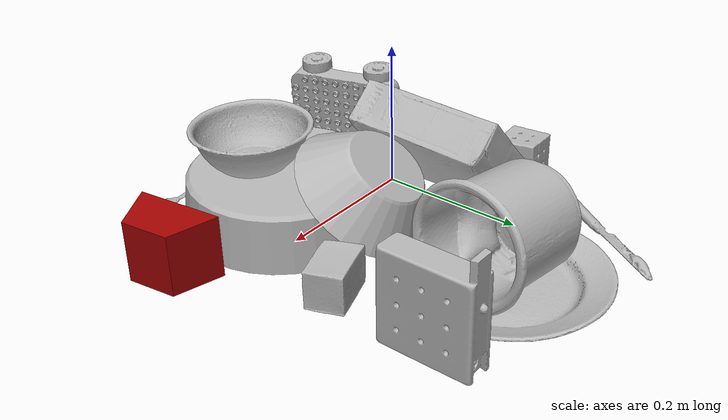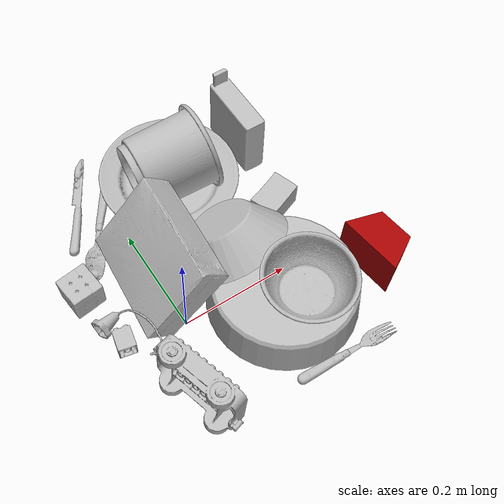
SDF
<sdf version="1.4">
  <world name="default">
    <light name="light1" type="point">
      <pose>0 0 1 0 0 0</pose>
      <diffuse>3 3 3 1</diffuse>
      <specular>3 3 3 1</specular>
    </light>
    <light name="light2" type="point">
      <pose>0 0.5 2 0 0 0</pose>
      <diffuse>1 1 1 1</diffuse>
      <specular>1 1 1 1</specular>
    </light>
    <light name="light3" type="point">
      <pose>0 0.5 2 0 0 0</pose>
      <diffuse>3 3 3 1</diffuse>
      <specular>3 3 3 1</specular>
    </light>
    <scene>
      <ambient>0.7 0.7 0.7</ambient>
    </scene>
    <model name="plate1">
      <link name="link_plate1">
        <collision name="default">
          <geometry>
            <mesh>
              <uri>model://pan_tefal/collision_meshes/collision.obj</uri>
              <scale>1.0 1.0 1.0</scale>
            </mesh>
          </geometry>
          <surface>
            <friction>
              <ode>
                <mu>0.5</mu>
                <mu2>0.5</mu2>
              </ode>
            </friction>
          <contact>
        <ode>
            <max_vel>0</max_vel>
            <min_depth>0.0001</min_depth>
            <kp>1e8</kp>
        </ode>
    </contact></surface>
        </collision>
        <visual name="default">
          <geometry>
            <mesh>
              <uri>model://pan_tefal/visual_meshes/visual.dae</uri>
              <scale>1.0 1.0 1.0</scale>
            </mesh>
          </geometry>
        </visual>
        <inertial>
          <mass>0.7575002908706665</mass>
          <pose>-0.00018002181604970247 3.278869189671241e-05 -0.00851493701338768 0.0008190213215647545 -0.0003301469994364688 -0.3318472895374236</pose>
          <inertia>
            <ixx>0.0052289874</ixx>
            <iyy>0.0052627004</iyy>
            <izz>0.009625561</izz>
            <ixy>0</ixy>
            <ixz>0</ixz>
            <iyz>0</iyz>
          </inertia>
        </inertial>
      </link>
      <pose>0.16540834307670593 -0.04800988733768463 0.03782228007912636 3.1415884256913627 -2.298823409807586e-06 2.5037458208143133</pose>
    </model>
    <model name="plate2">
      <link name="link_plate2">
        <collision name="default">
          <geometry>
            <mesh>
              <uri>model://plate/collision_meshes/collision.obj</uri>
              <scale>1.0 1.0 1.0</scale>
            </mesh>
          </geometry>
          <surface>
            <friction>
              <ode>
                <mu>0.5</mu>
                <mu2>0.5</mu2>
              </ode>
            </friction>
          <contact>
        <ode>
            <max_vel>0</max_vel>
            <min_depth>0.0001</min_depth>
            <kp>1e8</kp>
        </ode>
    </contact></surface>
        </collision>
        <visual name="default">
          <geometry>
            <mesh>
              <uri>model://plate/visual_meshes/visual.dae</uri>
              <scale>1.0 1.0 1.0</scale>
            </mesh>
          </geometry>
        </visual>
        <inertial>
          <mass>0.24305373430252075</mass>
          <pose>-0.0006044657784514129 0.0002782582014333457 -0.0010561988456174731 0.0022187349237576767 -0.0032255124479001144 0.4526250186623527</pose>
          <inertia>
            <ixx>0.00113701</ixx>
            <iyy>0.0011261352</iyy>
            <izz>0.0022238225</izz>
            <ixy>0</ixy>
            <ixz>0</ixz>
            <iyz>0</iyz>
          </inertia>
        </inertial>
      </link>
      <pose>0.12660396099090576 0.26857808232307434 0.013733085244894028 -5.013649689798627e-07 -2.204269611692718e-06 0.8925074987975505</pose>
    </model>
    <model name="bowl1">
      <link name="link_bowl1">
        <collision name="default">
          <geometry>
            <mesh>
              <uri>model://bowl/collision_meshes/collision.obj</uri>
              <scale>1.0 1.0 1.0</scale>
            </mesh>
          </geometry>
          <surface>
            <friction>
              <ode>
                <mu>0.5</mu>
                <mu2>0.5</mu2>
              </ode>
            </friction>
          <contact>
        <ode>
            <max_vel>0</max_vel>
            <min_depth>0.0001</min_depth>
            <kp>1e8</kp>
        </ode>
    </contact></surface>
        </collision>
        <visual name="default">
          <geometry>
            <mesh>
              <uri>model://bowl/visual_meshes/visual.dae</uri>
              <scale>1.0 1.0 1.0</scale>
            </mesh>
          </geometry>
        </visual>
        <inertial>
          <mass>0.08028676360845566</mass>
          <pose>0.00020445045083761215 -0.0010302026057615876 -0.0008042661938816309 -0.015764207515600946 0.014546645366850262 0.7140316236369888</pose>
          <inertia>
            <ixx>0.00018442512</ixx>
            <iyy>0.00018030431</iyy>
            <izz>0.0003102665</izz>
            <ixy>0</ixy>
            <ixz>0</ixz>
            <iyz>0</iyz>
          </inertia>
        </inertial>
      </link>
      <pose>0.1801273077726364 -0.08642246574163437 0.10461966693401337 -0.018998072299202494 0.010355730896347568 -2.6587045279647867</pose>
    </model>
    <model name="bowl2">
      <link name="link_bowl2">
        <collision name="default">
          <geometry>
            <mesh>
              <uri>model://bowl_a/collision_meshes/collision.obj</uri>
              <scale>1.0 1.0 1.0</scale>
            </mesh>
          </geometry>
          <surface>
            <friction>
              <ode>
                <mu>0.5</mu>
                <mu2>0.5</mu2>
              </ode>
            </friction>
          <contact>
        <ode>
            <max_vel>0</max_vel>
            <min_depth>0.0001</min_depth>
            <kp>1e8</kp>
        </ode>
    </contact></surface>
        </collision>
        <visual name="default">
          <geometry>
            <mesh>
              <uri>model://bowl_a/visual_meshes/visual.dae</uri>
              <scale>1.0 1.0 1.0</scale>
            </mesh>
          </geometry>
        </visual>
        <inertial>
          <mass>0.2016693353652954</mass>
          <pose>0.000278673687716946 4.731108856503852e-05 -0.0013765295734629035 -0.0009805301894988984 -0.0010938186520021772 -0.19123883274053055</pose>
          <inertia>
            <ixx>0.00057416206</ixx>
            <iyy>0.000577687</iyy>
            <izz>0.0010211696</izz>
            <ixy>0</ixy>
            <ixz>0</ixz>
            <iyz>0</iyz>
          </inertia>
        </inertial>
      </link>
      <pose>0.12920647859573364 0.07295124232769012 0.08240222930908203 3.0321417340500645 0.6381558390222016 1.6824936810072895</pose>
    </model>
    <model name="silverware1">
      <link name="link_silverware1">
        <collision name="default">
          <geometry>
            <mesh>
              <uri>model://spoon/collision_meshes/collision.obj</uri>
              <scale>1.0 1.0 1.0</scale>
            </mesh>
          </geometry>
          <surface>
            <friction>
              <ode>
                <mu>0.5</mu>
                <mu2>0.5</mu2>
              </ode>
            </friction>
          <contact>
        <ode>
            <max_vel>0</max_vel>
            <min_depth>0.0001</min_depth>
            <kp>1e8</kp>
        </ode>
    </contact></surface>
        </collision>
        <visual name="default">
          <geometry>
            <mesh>
              <uri>model://spoon/visual_meshes/visual.dae</uri>
              <scale>1.0 1.0 1.0</scale>
            </mesh>
          </geometry>
        </visual>
        <inertial>
          <mass>0.023438503965735435</mass>
          <pose>-0.005526317749172449 -0.0016034176805987954 -0.000727164966519922 0.03521671071703309 -0.03906584129558259 0.006150610048623938</pose>
          <inertia>
            <ixx>1.3036873e-06</ixx>
            <iyy>8.918272e-05</iyy>
            <izz>8.982564e-05</izz>
            <ixy>0</ixy>
            <ixz>0</ixz>
            <iyz>0</iyz>
          </inertia>
        </inertial>
      </link>
      <pose>-0.04024277254939079 0.23627544939517975 0.010201470926404 -2.7145402706672077 -0.061757488257934534 -2.179440727333121</pose>
    </model>
    <model name="box1">
      <link name="link_box1">
        <collision name="default">
          <geometry>
            <mesh>
              <uri>model://cracker_box/collision_meshes/collision.obj</uri>
              <scale>1.0 1.0 1.0</scale>
            </mesh>
          </geometry>
          <surface>
            <friction>
              <ode>
                <mu>0.5</mu>
                <mu2>0.5</mu2>
              </ode>
            </friction>
          <contact>
        <ode>
            <max_vel>0</max_vel>
            <min_depth>0.0001</min_depth>
            <kp>1e8</kp>
        </ode>
    </contact></surface>
        </collision>
        <visual name="default">
          <geometry>
            <mesh>
              <uri>model://cracker_box/visual_meshes/visual.dae</uri>
              <scale>1.0 1.0 1.0</scale>
            </mesh>
          </geometry>
        </visual>
        <inertial>
          <mass>3.1733922958374023</mass>
          <pose>0.0009464119793847203 0.00025434247800149024 -0.0017029535956680775 -0.00031620768891544627 -0.011106485874643508 0.0025467963987026074</pose>
          <inertia>
            <ixx>0.008071693</ixx>
            <iyy>0.013327951</iyy>
            <izz>0.01902021</izz>
            <ixy>0</ixy>
            <ixz>0</ixz>
            <iyz>0</iyz>
          </inertia>
        </inertial>
      </link>
      <pose>0.008488435298204422 0.09428602457046509 0.08045022189617157 2.280475754666676 -0.014701186570697328 1.5137398737815202</pose>
    </model>
    <model name="box2">
      <link name="link_box2">
        <collision name="default">
          <geometry>
            <mesh>
              <uri>model://rubiks_cube/collision_meshes/collision.obj</uri>
              <scale>1.0 1.0 1.0</scale>
            </mesh>
          </geometry>
          <surface>
            <friction>
              <ode>
                <mu>0.5</mu>
                <mu2>0.5</mu2>
              </ode>
            </friction>
          <contact>
        <ode>
            <max_vel>0</max_vel>
            <min_depth>0.0001</min_depth>
            <kp>1e8</kp>
        </ode>
    </contact></surface>
        </collision>
        <visual name="default">
          <geometry>
            <mesh>
              <uri>model://rubiks_cube/visual_meshes/visual.dae</uri>
              <scale>1.0 1.0 1.0</scale>
            </mesh>
          </geometry>
        </visual>
        <inertial>
          <mass>0.15184316039085388</mass>
          <pose>2.6721041649580002e-05 5.2569666877388954e-05 -7.264316536748083e-06 -0.0546734747968529 -0.09813870099197174 -0.03445517010401606</pose>
          <inertia>
            <ixx>8.390353e-05</ixx>
            <iyy>8.351226e-05</iyy>
            <izz>8.459882e-05</izz>
            <ixy>0</ixy>
            <ixz>0</ixz>
            <iyz>0</iyz>
          </inertia>
        </inertial>
      </link>
      <pose>-0.12443375587463379 0.13482896983623505 0.02970021590590477 -1.6127565974325777 -0.020652331800921412 1.689969857342618</pose>
    </model>
    <model name="cup1">
      <link name="link_cup1">
        <collision name="default">
          <geometry>
            <mesh>
              <uri>model://f_cups/collision_meshes/collision.obj</uri>
              <scale>2.0 2.0 2.0</scale>
            </mesh>
          </geometry>
          <surface>
            <friction>
              <ode>
                <mu>0.5</mu>
                <mu2>0.5</mu2>
              </ode>
            </friction>
          <contact>
        <ode>
            <max_vel>0</max_vel>
            <min_depth>0.0001</min_depth>
            <kp>1e8</kp>
        </ode>
    </contact></surface>
        </collision>
        <visual name="default">
          <geometry>
            <mesh>
              <uri>model://f_cups/visual_meshes/visual.dae</uri>
              <scale>2.0 2.0 2.0</scale>
            </mesh>
          </geometry>
        </visual>
        <inertial>
          <mass>0.31799542903900146</mass>
          <pose>-0.006342939101159573 -0.0012480145087465644 -0.00731107359752059 0.7862267301708457 -0.2607925342729672 -0.18237300859269054</pose>
          <inertia>
            <ixx>0.0011956966</ixx>
            <iyy>0.0012542997</iyy>
            <izz>0.001305761</izz>
            <ixy>0</ixy>
            <ixz>0</ixz>
            <iyz>0</iyz>
          </inertia>
        </inertial>
      </link>
      <pose>0.12135220319032669 0.2584349513053894 0.07765331864356995 1.4776772451416573 -0.2557453139008457 1.5212256622422429</pose>
    </model>
    <model name="silverware2">
      <link name="link_silverware2">
        <collision name="default">
          <geometry>
            <mesh>
              <uri>model://knife/collision_meshes/collision.obj</uri>
              <scale>1.0 1.0 1.0</scale>
            </mesh>
          </geometry>
          <surface>
            <friction>
              <ode>
                <mu>0.5</mu>
                <mu2>0.5</mu2>
              </ode>
            </friction>
          <contact>
        <ode>
            <max_vel>0</max_vel>
            <min_depth>0.0001</min_depth>
            <kp>1e8</kp>
        </ode>
    </contact></surface>
        </collision>
        <visual name="default">
          <geometry>
            <mesh>
              <uri>model://knife/visual_meshes/visual.dae</uri>
              <scale>1.0 1.0 1.0</scale>
            </mesh>
          </geometry>
        </visual>
        <inertial>
          <mass>0.01713745854794979</mass>
          <pose>-0.02378525771200657 0.0015275123296305537 5.062021591584198e-05 0.07305753061421462 0.017248419855317693 -0.007409818535045194</pose>
          <inertia>
            <ixx>4.864306e-07</ixx>
            <iyy>6.583934e-05</iyy>
            <izz>6.5996e-05</izz>
            <ixy>0</ixy>
            <ixz>0</ixz>
            <iyz>0</iyz>
          </inertia>
        </inertial>
      </link>
      <pose>-0.047515641897916794 0.3091530203819275 0.0058107576332986355 2.889370729954412 0.02591493375330008 1.0431395189767447</pose>
    </model>
    <model name="silverware3">
      <link name="link_silverware3">
        <collision name="default">
          <geometry>
            <mesh>
              <uri>model://fork/collision_meshes/collision.obj</uri>
              <scale>1.0 1.0 1.0</scale>
            </mesh>
          </geometry>
          <surface>
            <friction>
              <ode>
                <mu>0.5</mu>
                <mu2>0.5</mu2>
              </ode>
            </friction>
          <contact>
        <ode>
            <max_vel>0</max_vel>
            <min_depth>0.0001</min_depth>
            <kp>1e8</kp>
        </ode>
    </contact></surface>
        </collision>
        <visual name="default">
          <geometry>
            <mesh>
              <uri>model://fork/visual_meshes/visual.dae</uri>
              <scale>1.0 1.0 1.0</scale>
            </mesh>
          </geometry>
        </visual>
        <inertial>
          <mass>0.012323527596890926</mass>
          <pose>-0.029570043087005615 0.00046588233090005815 0.0003218861238565296 -0.013551145261099908 -0.01097783717976447 0.01445390335153306</pose>
          <inertia>
            <ixx>4.3200933e-07</ixx>
            <iyy>3.2173175e-05</iyy>
            <izz>3.236641e-05</izz>
            <ixy>0</ixy>
            <ixz>0</ixz>
            <iyz>0</iyz>
          </inertia>
        </inertial>
      </link>
      <pose>0.19701193273067474 -0.1901979148387909 0.007446609437465668 -3.06349999385822 0.002835862233890947 -0.021132140086027755</pose>
    </model>
    <model name="toy1">
      <link name="link_toy1">
        <collision name="default">
          <geometry>
            <mesh>
              <uri>model://foam_brick/collision_meshes/collision.obj</uri>
              <scale>1.0 1.0 1.0</scale>
            </mesh>
          </geometry>
          <surface>
            <friction>
              <ode>
                <mu>0.5</mu>
                <mu2>0.5</mu2>
              </ode>
            </friction>
          <contact>
        <ode>
            <max_vel>0</max_vel>
            <min_depth>0.0001</min_depth>
            <kp>1e8</kp>
        </ode>
    </contact></surface>
        </collision>
        <visual name="default">
          <geometry>
            <mesh>
              <uri>model://foam_brick/visual_meshes/visual.dae</uri>
              <scale>1.0 1.0 1.0</scale>
            </mesh>
          </geometry>
        </visual>
        <inertial>
          <mass>0.22379855811595917</mass>
          <pose>-0.00025224717683158815 0.0003458436403889209 -0.0002532101352699101 -0.29401565582258504 0.017274431815567964 -0.0007449878256007176</pose>
          <inertia>
            <ixx>9.775939e-05</ixx>
            <iyy>0.00015607789</iyy>
            <izz>0.00015806146</izz>
            <ixy>0</ixy>
            <ixz>0</ixz>
            <iyz>0</iyz>
          </inertia>
        </inertial>
      </link>
      <pose>0.2576083540916443 0.11502417176961899 0.02549641765654087 3.13253363023575 0.00655899249284925 -2.783905382325841</pose>
    </model>
    <model name="toy2">
      <link name="link_toy2">
        <collision name="default">
          <geometry>
            <mesh>
              <uri>model://g_lego_duplo/collision_meshes/collision.obj</uri>
              <scale>1.0 1.0 1.0</scale>
            </mesh>
          </geometry>
          <surface>
            <friction>
              <ode>
                <mu>0.5</mu>
                <mu2>0.5</mu2>
              </ode>
            </friction>
          <contact>
        <ode>
            <max_vel>0</max_vel>
            <min_depth>0.0001</min_depth>
            <kp>1e8</kp>
        </ode>
    </contact></surface>
        </collision>
        <visual name="default">
          <geometry>
            <mesh>
              <uri>model://g_lego_duplo/visual_meshes/visual.dae</uri>
              <scale>1.0 1.0 1.0</scale>
            </mesh>
          </geometry>
        </visual>
        <inertial>
          <mass>0.5124852657318115</mass>
          <pose>-0.05004769191145897 0.0017554633086547256 0.003880675183609128 0.010962987419080987 0.0381082502855883 -0.09653031806986456</pose>
          <inertia>
            <ixx>0.0007425969</ixx>
            <iyy>0.0022451086</iyy>
            <izz>0.0028087152</izz>
            <ixy>0</ixy>
            <ixz>0</ixz>
            <iyz>0</iyz>
          </inertia>
        </inertial>
      </link>
      <pose>-0.06728708744049072 -0.0654253140091896 0.059839844703674316 1.6330812803064507 0.0019943658663145627 1.8593469302650627</pose>
    </model>
    <model name="toy3">
      <link name="link_toy3">
        <collision name="default">
          <geometry>
            <mesh>
              <uri>model://nine_hole_peg_test/collision_meshes/collision.obj</uri>
              <scale>1.0 1.0 1.0</scale>
            </mesh>
          </geometry>
          <surface>
            <friction>
              <ode>
                <mu>0.5</mu>
                <mu2>0.5</mu2>
              </ode>
            </friction>
          <contact>
        <ode>
            <max_vel>0</max_vel>
            <min_depth>0.0001</min_depth>
            <kp>1e8</kp>
        </ode>
    </contact></surface>
        </collision>
        <visual name="default">
          <geometry>
            <mesh>
              <uri>model://nine_hole_peg_test/visual_meshes/visual.dae</uri>
              <scale>1.0 1.0 1.0</scale>
            </mesh>
          </geometry>
        </visual>
        <inertial>
          <mass>0.8364987969398499</mass>
          <pose>-0.004617386497557163 -0.009647614322602749 2.6460691515239887e-05 -0.0014666793226822761 0.000719418076932787 -0.634241593386854</pose>
          <inertia>
            <ixx>0.0013080036</ixx>
            <iyy>0.0012212693</iyy>
            <izz>0.0022920077</izz>
            <ixy>0</ixy>
            <ixz>0</ixz>
            <iyz>0</iyz>
          </inertia>
        </inertial>
      </link>
      <pose>0.27809274196624756 0.2770231068134308 0.07401725649833679 1.5585109895470226 -0.007628918778817432 1.569561300355558</pose>
    </model>
    <model name="toy4">
      <link name="link_toy4">
        <collision name="default">
          <geometry>
            <mesh>
              <uri>model://b_lego_duplo/collision_meshes/collision.obj</uri>
              <scale>1.0 1.0 1.0</scale>
            </mesh>
          </geometry>
          <surface>
            <friction>
              <ode>
                <mu>0.5</mu>
                <mu2>0.5</mu2>
              </ode>
            </friction>
          <contact>
        <ode>
            <max_vel>0</max_vel>
            <min_depth>0.0001</min_depth>
            <kp>1e8</kp>
        </ode>
    </contact></surface>
        </collision>
        <visual name="default">
          <geometry>
            <mesh>
              <uri>model://b_lego_duplo/visual_meshes/visual.dae</uri>
              <scale>1.0 1.0 1.0</scale>
            </mesh>
          </geometry>
        </visual>
        <inertial>
          <mass>0.0316849946975708</mass>
          <pose>-0.00011053055641241372 -9.15226701181382e-06 0.0019294292433187366 -0.03749472548528336 -0.026354304906346077 0.4518915128408031</pose>
          <inertia>
            <ixx>6.4845735e-06</ixx>
            <iyy>6.5281647e-06</iyy>
            <izz>5.777544e-06</izz>
            <ixy>0</ixy>
            <ixz>0</ixz>
            <iyz>0</iyz>
          </inertia>
        </inertial>
      </link>
      <pose>-0.10531105846166611 0.022143986076116562 0.01618090271949768 0.04554551986764226 -1.562378487342856 -1.8121413704136293</pose>
    </model>
    <model name="toy5">
      <link name="link_toy5">
        <collision name="default">
          <geometry>
            <mesh>
              <uri>model://prism/collision_meshes/collision.obj</uri>
              <scale>1.0 1.0 1.0</scale>
            </mesh>
          </geometry>
          <surface>
            <friction>
              <ode>
                <mu>0.5</mu>
                <mu2>0.5</mu2>
              </ode>
            </friction>
          <contact>
        <ode>
            <max_vel>0</max_vel>
            <min_depth>0.0001</min_depth>
            <kp>1e8</kp>
        </ode>
    </contact></surface>
        </collision>
        <visual name="default">
          <geometry>
            <mesh>
              <uri>model://prism/visual_meshes/visual.dae</uri>
              <scale>1.0 1.0 1.0</scale>
            </mesh>
          </geometry>
        </visual>
        <inertial>
          <mass>0.34586653113365173</mass>
          <pose>-9.853597293840721e-05 -4.96157269935793e-07 -0.0033869100734591484 0.0 0.006559180766136186 0.0</pose>
          <inertia>
            <ixx>0.00031214024</ixx>
            <iyy>0.00037722557</iyy>
            <izz>0.00046205617</izz>
            <ixy>0</ixy>
            <ixz>0</ixz>
            <iyz>0</iyz>
          </inertia>
        </inertial>
      </link>
      <pose>0.3488650619983673 -0.07062847167253494 0.04158850759267807 1.5836355546284742 1.5347255733013424e-07 1.7030563819433002</pose>
    </model>
  <physics type="ode">
      <max_contacts>50</max_contacts>
      <ode>
        <solver>
          <type>quick</type>
          <iters>75</iters>
        </solver>
        <constraints>
          <contact_max_correcting_vel>0</contact_max_correcting_vel>
          <contact_surface_layer>0</contact_surface_layer>
        </constraints>
      </ode>
    </physics></world>
</sdf>
